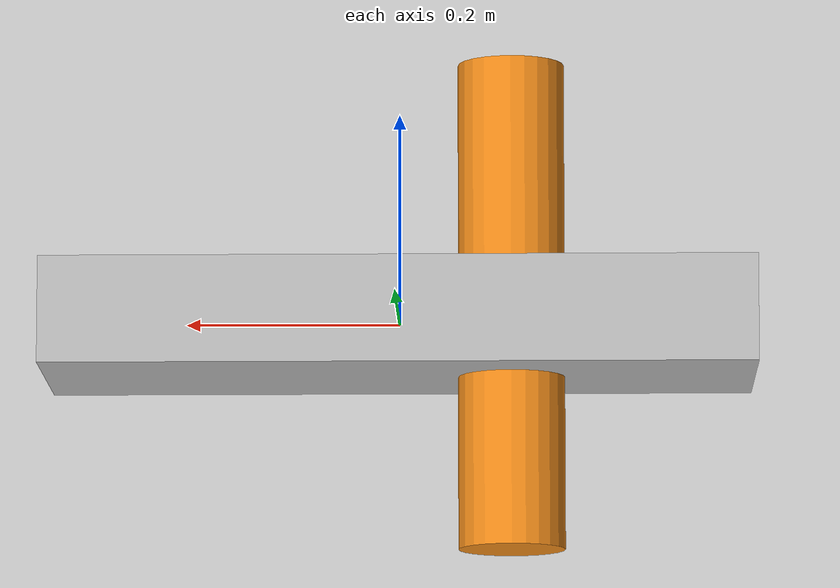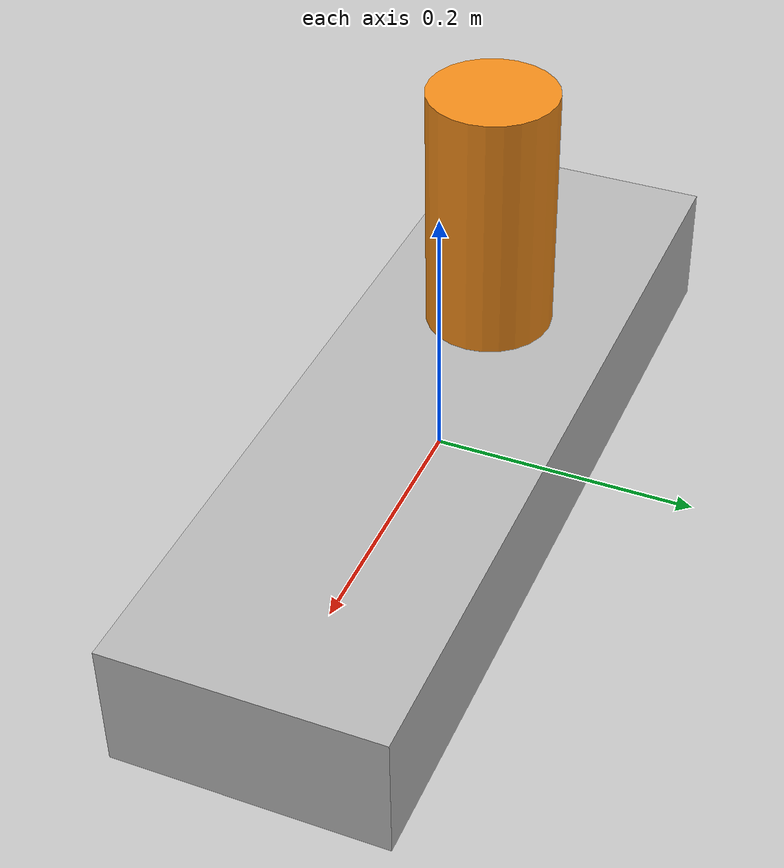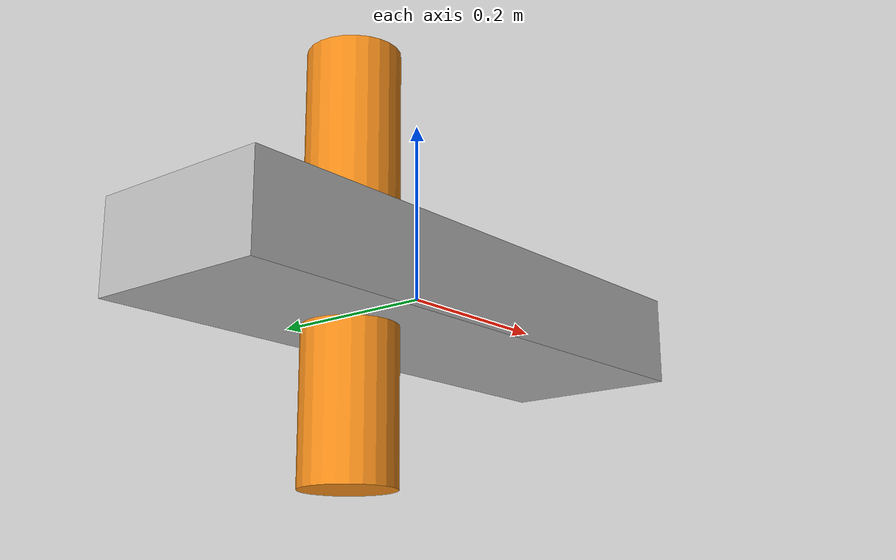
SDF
<?xml version="1.0" ?>
<sdf version="1.5">
	<model name="agile_robot">
		<pose>0 0 0 0 0 0</pose>

		<link name="body">
      <visual name="body_visual">
        <geometry>
          <box>
            <size>0.1 0.206 0.666</size>
          </box>
        </geometry>
        <pose>0 0 0 1.570796349 1.570796349 1.570796349</pose>
      </visual>

      <collision name="body_collision">
        <geometry>
          <box>
            <size>0.1 0.206 0.666</size>
          </box>
        </geometry>
        <pose>-.294161 -.000952 .016932 1.570796349 0 1.570796349</pose>
      </collision>

      <inertial>
        <inertia>
          <ixx>.506565255</ixx>
          <ixy>-.000206853</ixy>
          <ixz>-.004881012</ixz>
          <iyy>.516386594</iyy>
          <iyz>.006092892</iyz>
          <izz>.074902421</izz>
        </inertia>
        <mass>9.9629698</mass>
      </inertial>

			<sensor name="imu_sensor" type='imu'>
			  <always_on>1</always_on>
			  <update_rate>1000</update_rate>
			  <imu>
					<angular_velocity>
					  <x>
						<noise type="gaussian">
						 <mean>0</mean>
						 <stddev>0.0002</stddev>
						 <bias_mean>7.5e-06</bias_mean>
						 <bias_stddev>8e-07</bias_stddev>
						</noise>
					  </x>
					  <y>
						<noise type="gaussian">
						 <mean>0</mean>
						 <stddev>0.0002</stddev>
						 <bias_mean>7.5e-06</bias_mean>
						 <bias_stddev>8e-07</bias_stddev>
						</noise>
					  </y>
					  <z>
						<noise type="gaussian">
						 <mean>0</mean>
						 <stddev>0.0002</stddev>
						 <bias_mean>7.5e-06</bias_mean>
						 <bias_stddev>8e-07</bias_stddev>
						</noise>
					  </z>
					</angular_velocity>

					<linear_acceleration>
					  <x>
						<noise type="gaussian">
						  <mean>0</mean>
						  <stddev>0.017</stddev>
						  <bias_mean>0.1</bias_mean>
						  <bias_stddev>0.001</bias_stddev>
						</noise>
					  </x>
					  <y>
						<noise type="gaussian">
						  <mean>0</mean>
						  <stddev>0.017</stddev>
						  <bias_mean>0.1</bias_mean>
						  <bias_stddev>0.001</bias_stddev>
						</noise>
					  </y>
					  <z>
						<noise type="gaussian">
						  <mean>0</mean>
						  <stddev>0.017</stddev>
						  <bias_mean>0.1</bias_mean>
						  <bias_stddev>0.001</bias_stddev>
						</noise>
					  </z>
					</linear_acceleration>
			  </imu>
			</sensor>
		</link>

		<link name="fl_base">
			<pose>-0.10486 -.000933 .017767 1.570796349 0 3.141592698</pose>

      <inertial>
        <inertia>
          <ixx>.000458198</ixx>
          <ixy>-.000198409</ixy>
          <ixz>-.000000564</ixz>
          <iyy>.005121443</iyy>
          <iyz>-.000002605</iyz>
          <izz>.00519021</izz>
        </inertia>
        <mass>0.67833686</mass>
      </inertial>

			<collision name="fl_base_collision">
				<pose>0 0 0 -1.57079 0 0</pose>
				<geometry>
					<cylinder>
						<radius>0.05</radius>
						<length>0.46</length>
					</cylinder>
				</geometry>
			</collision>

			<visual name="fl_base_visual">
				<pose>0 0 0 -1.57079 0 0</pose>
				<geometry>
					<cylinder>
						<radius>0.05</radius>
						<length>0.46</length>
					</cylinder>
				</geometry>
				<material>
					<script>
						<name>Gazebo/Orange</name>
					</script>
				</material>
			</visual>

		</link>

	</model>
</sdf>
